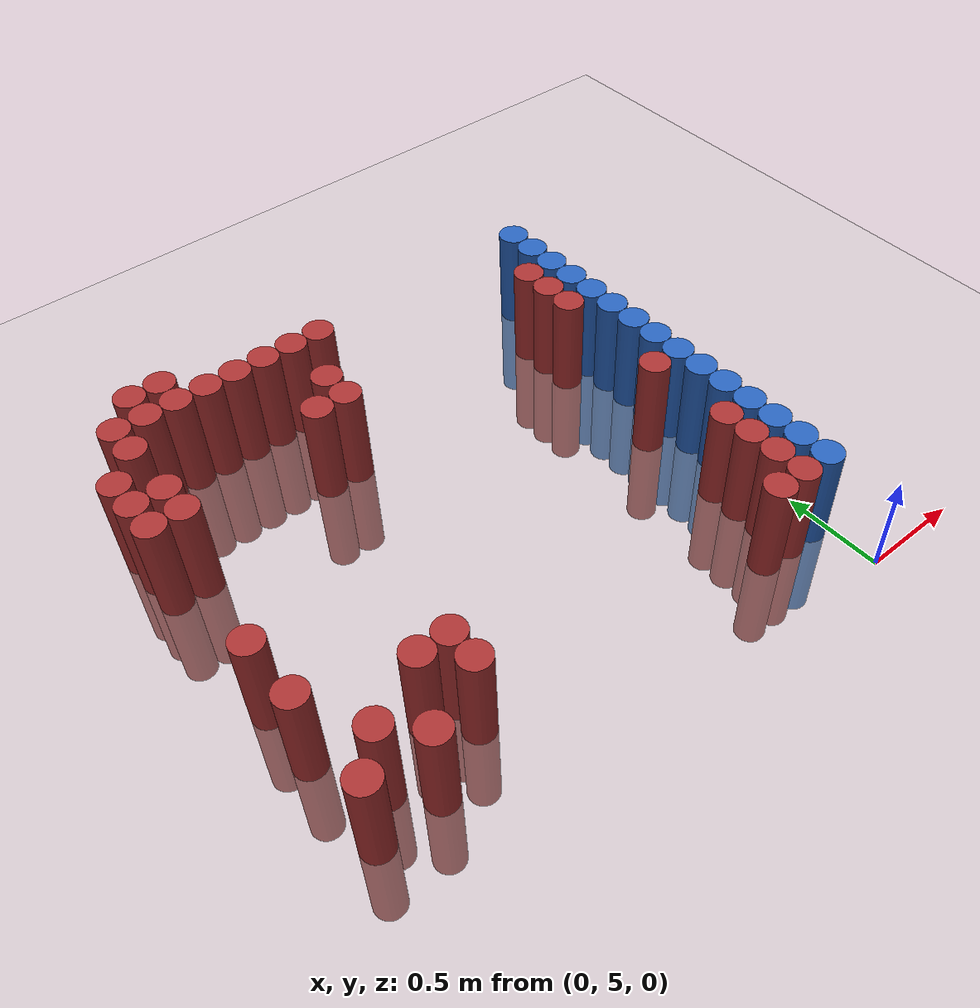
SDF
<sdf version="1.6">
 <world name="default">
  <model name="ground_plane">
   <static>1</static>
   <link name="link">
    <collision name="collision">
     <geometry><plane><normal>0 0 1</normal><size>100 100</size></plane></geometry>
     <surface><friction><ode><mu>100</mu><mu2>50</mu2></ode></friction></surface>
    </collision>
    <visual name="visual">
     <cast_shadows>0</cast_shadows>
     <geometry><plane><normal>0 0 1</normal><size>100 100</size></plane></geometry>
     <material>
      <script><uri>file://media/materials/scripts/gazebo.material</uri><name>Gazebo/Grey</name></script>
     </material>
    </visual>
   </link>
  </model>
  <model name="unit_cylinder_152">
   <static>1</static>
   <pose>-2.475000 5.325000 0.000000 0.000000 0.000000 0.000000</pose>
   <link name="link">
    <inertial>
     <mass>1</mass>
     <inertia><ixx>0.145833</ixx><ixy>0</ixy><ixz>0</ixz><iyy>0.145833</iyy><iyz>0</iyz><izz>0.125</izz></inertia>
    </inertial>
    <collision name="collision">
     <geometry><cylinder><radius>0.075000</radius><length>1</length></cylinder></geometry>
    </collision>
    <visual name="visual">
     <geometry><cylinder><radius>0.075000</radius><length>1</length></cylinder></geometry>
     <material>
      <ambient>0.648000 0.192000 0.192000 1</ambient>
      <diffuse>0.648000 0.192000 0.192000 1</diffuse>
     </material>
     <material>
      <script><name>Gazebo/Grey</name><uri>file://media/materials/scripts/gazebo.material</uri></script>
     </material>
    </visual>
   </link>
  </model>
  <model name="unit_cylinder_153">
   <static>1</static>
   <pose>-2.475000 5.775000 0.000000 0.000000 0.000000 0.000000</pose>
   <link name="link">
    <inertial>
     <mass>1</mass>
     <inertia><ixx>0.145833</ixx><ixy>0</ixy><ixz>0</ixz><iyy>0.145833</iyy><iyz>0</iyz><izz>0.125</izz></inertia>
    </inertial>
    <collision name="collision">
     <geometry><cylinder><radius>0.075000</radius><length>1</length></cylinder></geometry>
    </collision>
    <visual name="visual">
     <geometry><cylinder><radius>0.075000</radius><length>1</length></cylinder></geometry>
     <material>
      <ambient>0.648000 0.192000 0.192000 1</ambient>
      <diffuse>0.648000 0.192000 0.192000 1</diffuse>
     </material>
     <material>
      <script><name>Gazebo/Grey</name><uri>file://media/materials/scripts/gazebo.material</uri></script>
     </material>
    </visual>
   </link>
  </model>
  <model name="unit_cylinder_154">
   <static>1</static>
   <pose>-2.475000 6.075000 0.000000 0.000000 0.000000 0.000000</pose>
   <link name="link">
    <inertial>
     <mass>1</mass>
     <inertia><ixx>0.145833</ixx><ixy>0</ixy><ixz>0</ixz><iyy>0.145833</iyy><iyz>0</iyz><izz>0.125</izz></inertia>
    </inertial>
    <collision name="collision">
     <geometry><cylinder><radius>0.075000</radius><length>1</length></cylinder></geometry>
    </collision>
    <visual name="visual">
     <geometry><cylinder><radius>0.075000</radius><length>1</length></cylinder></geometry>
     <material>
      <ambient>0.648000 0.192000 0.192000 1</ambient>
      <diffuse>0.648000 0.192000 0.192000 1</diffuse>
     </material>
     <material>
      <script><name>Gazebo/Grey</name><uri>file://media/materials/scripts/gazebo.material</uri></script>
     </material>
    </visual>
   </link>
  </model>
  <model name="unit_cylinder_155">
   <static>1</static>
   <pose>-2.475000 6.825000 0.000000 0.000000 0.000000 0.000000</pose>
   <link name="link">
    <inertial>
     <mass>1</mass>
     <inertia><ixx>0.145833</ixx><ixy>0</ixy><ixz>0</ixz><iyy>0.145833</iyy><iyz>0</iyz><izz>0.125</izz></inertia>
    </inertial>
    <collision name="collision">
     <geometry><cylinder><radius>0.075000</radius><length>1</length></cylinder></geometry>
    </collision>
    <visual name="visual">
     <geometry><cylinder><radius>0.075000</radius><length>1</length></cylinder></geometry>
     <material>
      <ambient>0.648000 0.192000 0.192000 1</ambient>
      <diffuse>0.648000 0.192000 0.192000 1</diffuse>
     </material>
     <material>
      <script><name>Gazebo/Grey</name><uri>file://media/materials/scripts/gazebo.material</uri></script>
     </material>
    </visual>
   </link>
  </model>
  <model name="unit_cylinder_156">
   <static>1</static>
   <pose>-2.475000 6.975000 0.000000 0.000000 0.000000 0.000000</pose>
   <link name="link">
    <inertial>
     <mass>1</mass>
     <inertia><ixx>0.145833</ixx><ixy>0</ixy><ixz>0</ixz><iyy>0.145833</iyy><iyz>0</iyz><izz>0.125</izz></inertia>
    </inertial>
    <collision name="collision">
     <geometry><cylinder><radius>0.075000</radius><length>1</length></cylinder></geometry>
    </collision>
    <visual name="visual">
     <geometry><cylinder><radius>0.075000</radius><length>1</length></cylinder></geometry>
     <material>
      <ambient>0.648000 0.192000 0.192000 1</ambient>
      <diffuse>0.648000 0.192000 0.192000 1</diffuse>
     </material>
     <material>
      <script><name>Gazebo/Grey</name><uri>file://media/materials/scripts/gazebo.material</uri></script>
     </material>
    </visual>
   </link>
  </model>
  <model name="unit_cylinder_157">
   <static>1</static>
   <pose>-2.475000 7.125000 0.000000 0.000000 0.000000 0.000000</pose>
   <link name="link">
    <inertial>
     <mass>1</mass>
     <inertia><ixx>0.145833</ixx><ixy>0</ixy><ixz>0</ixz><iyy>0.145833</iyy><iyz>0</iyz><izz>0.125</izz></inertia>
    </inertial>
    <collision name="collision">
     <geometry><cylinder><radius>0.075000</radius><length>1</length></cylinder></geometry>
    </collision>
    <visual name="visual">
     <geometry><cylinder><radius>0.075000</radius><length>1</length></cylinder></geometry>
     <material>
      <ambient>0.648000 0.192000 0.192000 1</ambient>
      <diffuse>0.648000 0.192000 0.192000 1</diffuse>
     </material>
     <material>
      <script><name>Gazebo/Grey</name><uri>file://media/materials/scripts/gazebo.material</uri></script>
     </material>
    </visual>
   </link>
  </model>
  <model name="unit_cylinder_161">
   <static>1</static>
   <pose>-2.325000 5.475000 0.000000 0.000000 0.000000 0.000000</pose>
   <link name="link">
    <inertial>
     <mass>1</mass>
     <inertia><ixx>0.145833</ixx><ixy>0</ixy><ixz>0</ixz><iyy>0.145833</iyy><iyz>0</iyz><izz>0.125</izz></inertia>
    </inertial>
    <collision name="collision">
     <geometry><cylinder><radius>0.075000</radius><length>1</length></cylinder></geometry>
    </collision>
    <visual name="visual">
     <geometry><cylinder><radius>0.075000</radius><length>1</length></cylinder></geometry>
     <material>
      <ambient>0.648000 0.192000 0.192000 1</ambient>
      <diffuse>0.648000 0.192000 0.192000 1</diffuse>
     </material>
     <material>
      <script><name>Gazebo/Grey</name><uri>file://media/materials/scripts/gazebo.material</uri></script>
     </material>
    </visual>
   </link>
  </model>
  <model name="unit_cylinder_162">
   <static>1</static>
   <pose>-2.325000 6.825000 0.000000 0.000000 0.000000 0.000000</pose>
   <link name="link">
    <inertial>
     <mass>1</mass>
     <inertia><ixx>0.145833</ixx><ixy>0</ixy><ixz>0</ixz><iyy>0.145833</iyy><iyz>0</iyz><izz>0.125</izz></inertia>
    </inertial>
    <collision name="collision">
     <geometry><cylinder><radius>0.075000</radius><length>1</length></cylinder></geometry>
    </collision>
    <visual name="visual">
     <geometry><cylinder><radius>0.075000</radius><length>1</length></cylinder></geometry>
     <material>
      <ambient>0.648000 0.192000 0.192000 1</ambient>
      <diffuse>0.648000 0.192000 0.192000 1</diffuse>
     </material>
     <material>
      <script><name>Gazebo/Grey</name><uri>file://media/materials/scripts/gazebo.material</uri></script>
     </material>
    </visual>
   </link>
  </model>
  <model name="unit_cylinder_163">
   <static>1</static>
   <pose>-2.325000 6.975000 0.000000 0.000000 0.000000 0.000000</pose>
   <link name="link">
    <inertial>
     <mass>1</mass>
     <inertia><ixx>0.145833</ixx><ixy>0</ixy><ixz>0</ixz><iyy>0.145833</iyy><iyz>0</iyz><izz>0.125</izz></inertia>
    </inertial>
    <collision name="collision">
     <geometry><cylinder><radius>0.075000</radius><length>1</length></cylinder></geometry>
    </collision>
    <visual name="visual">
     <geometry><cylinder><radius>0.075000</radius><length>1</length></cylinder></geometry>
     <material>
      <ambient>0.648000 0.192000 0.192000 1</ambient>
      <diffuse>0.648000 0.192000 0.192000 1</diffuse>
     </material>
     <material>
      <script><name>Gazebo/Grey</name><uri>file://media/materials/scripts/gazebo.material</uri></script>
     </material>
    </visual>
   </link>
  </model>
  <model name="unit_cylinder_164">
   <static>1</static>
   <pose>-2.325000 7.275000 0.000000 0.000000 0.000000 0.000000</pose>
   <link name="link">
    <inertial>
     <mass>1</mass>
     <inertia><ixx>0.145833</ixx><ixy>0</ixy><ixz>0</ixz><iyy>0.145833</iyy><iyz>0</iyz><izz>0.125</izz></inertia>
    </inertial>
    <collision name="collision">
     <geometry><cylinder><radius>0.075000</radius><length>1</length></cylinder></geometry>
    </collision>
    <visual name="visual">
     <geometry><cylinder><radius>0.075000</radius><length>1</length></cylinder></geometry>
     <material>
      <ambient>0.648000 0.192000 0.192000 1</ambient>
      <diffuse>0.648000 0.192000 0.192000 1</diffuse>
     </material>
     <material>
      <script><name>Gazebo/Grey</name><uri>file://media/materials/scripts/gazebo.material</uri></script>
     </material>
    </visual>
   </link>
  </model>
  <model name="unit_cylinder_165">
   <static>1</static>
   <pose>-2.325000 7.425000 0.000000 0.000000 0.000000 0.000000</pose>
   <link name="link">
    <inertial>
     <mass>1</mass>
     <inertia><ixx>0.145833</ixx><ixy>0</ixy><ixz>0</ixz><iyy>0.145833</iyy><iyz>0</iyz><izz>0.125</izz></inertia>
    </inertial>
    <collision name="collision">
     <geometry><cylinder><radius>0.075000</radius><length>1</length></cylinder></geometry>
    </collision>
    <visual name="visual">
     <geometry><cylinder><radius>0.075000</radius><length>1</length></cylinder></geometry>
     <material>
      <ambient>0.648000 0.192000 0.192000 1</ambient>
      <diffuse>0.648000 0.192000 0.192000 1</diffuse>
     </material>
     <material>
      <script><name>Gazebo/Grey</name><uri>file://media/materials/scripts/gazebo.material</uri></script>
     </material>
    </visual>
   </link>
  </model>
  <model name="unit_cylinder_166">
   <static>1</static>
   <pose>-2.175000 5.325000 0.000000 0.000000 0.000000 0.000000</pose>
   <link name="link">
    <inertial>
     <mass>1</mass>
     <inertia><ixx>0.145833</ixx><ixy>0</ixy><ixz>0</ixz><iyy>0.145833</iyy><iyz>0</iyz><izz>0.125</izz></inertia>
    </inertial>
    <collision name="collision">
     <geometry><cylinder><radius>0.075000</radius><length>1</length></cylinder></geometry>
    </collision>
    <visual name="visual">
     <geometry><cylinder><radius>0.075000</radius><length>1</length></cylinder></geometry>
     <material>
      <ambient>0.648000 0.192000 0.192000 1</ambient>
      <diffuse>0.648000 0.192000 0.192000 1</diffuse>
     </material>
     <material>
      <script><name>Gazebo/Grey</name><uri>file://media/materials/scripts/gazebo.material</uri></script>
     </material>
    </visual>
   </link>
  </model>
  <model name="unit_cylinder_167">
   <static>1</static>
   <pose>-2.175000 7.425000 0.000000 0.000000 0.000000 0.000000</pose>
   <link name="link">
    <inertial>
     <mass>1</mass>
     <inertia><ixx>0.145833</ixx><ixy>0</ixy><ixz>0</ixz><iyy>0.145833</iyy><iyz>0</iyz><izz>0.125</izz></inertia>
    </inertial>
    <collision name="collision">
     <geometry><cylinder><radius>0.075000</radius><length>1</length></cylinder></geometry>
    </collision>
    <visual name="visual">
     <geometry><cylinder><radius>0.075000</radius><length>1</length></cylinder></geometry>
     <material>
      <ambient>0.648000 0.192000 0.192000 1</ambient>
      <diffuse>0.648000 0.192000 0.192000 1</diffuse>
     </material>
     <material>
      <script><name>Gazebo/Grey</name><uri>file://media/materials/scripts/gazebo.material</uri></script>
     </material>
    </visual>
   </link>
  </model>
  <model name="unit_cylinder_168">
   <static>1</static>
   <pose>-2.175000 7.575000 0.000000 0.000000 0.000000 0.000000</pose>
   <link name="link">
    <inertial>
     <mass>1</mass>
     <inertia><ixx>0.145833</ixx><ixy>0</ixy><ixz>0</ixz><iyy>0.145833</iyy><iyz>0</iyz><izz>0.125</izz></inertia>
    </inertial>
    <collision name="collision">
     <geometry><cylinder><radius>0.075000</radius><length>1</length></cylinder></geometry>
    </collision>
    <visual name="visual">
     <geometry><cylinder><radius>0.075000</radius><length>1</length></cylinder></geometry>
     <material>
      <ambient>0.648000 0.192000 0.192000 1</ambient>
      <diffuse>0.648000 0.192000 0.192000 1</diffuse>
     </material>
     <material>
      <script><name>Gazebo/Grey</name><uri>file://media/materials/scripts/gazebo.material</uri></script>
     </material>
    </visual>
   </link>
  </model>
  <model name="unit_cylinder_170">
   <static>1</static>
   <pose>-2.025000 5.625000 0.000000 0.000000 0.000000 0.000000</pose>
   <link name="link">
    <inertial>
     <mass>1</mass>
     <inertia><ixx>0.145833</ixx><ixy>0</ixy><ixz>0</ixz><iyy>0.145833</iyy><iyz>0</iyz><izz>0.125</izz></inertia>
    </inertial>
    <collision name="collision">
     <geometry><cylinder><radius>0.075000</radius><length>1</length></cylinder></geometry>
    </collision>
    <visual name="visual">
     <geometry><cylinder><radius>0.075000</radius><length>1</length></cylinder></geometry>
     <material>
      <ambient>0.648000 0.192000 0.192000 1</ambient>
      <diffuse>0.648000 0.192000 0.192000 1</diffuse>
     </material>
     <material>
      <script><name>Gazebo/Grey</name><uri>file://media/materials/scripts/gazebo.material</uri></script>
     </material>
    </visual>
   </link>
  </model>
  <model name="unit_cylinder_171">
   <static>1</static>
   <pose>-2.025000 7.425000 0.000000 0.000000 0.000000 0.000000</pose>
   <link name="link">
    <inertial>
     <mass>1</mass>
     <inertia><ixx>0.145833</ixx><ixy>0</ixy><ixz>0</ixz><iyy>0.145833</iyy><iyz>0</iyz><izz>0.125</izz></inertia>
    </inertial>
    <collision name="collision">
     <geometry><cylinder><radius>0.075000</radius><length>1</length></cylinder></geometry>
    </collision>
    <visual name="visual">
     <geometry><cylinder><radius>0.075000</radius><length>1</length></cylinder></geometry>
     <material>
      <ambient>0.648000 0.192000 0.192000 1</ambient>
      <diffuse>0.648000 0.192000 0.192000 1</diffuse>
     </material>
     <material>
      <script><name>Gazebo/Grey</name><uri>file://media/materials/scripts/gazebo.material</uri></script>
     </material>
    </visual>
   </link>
  </model>
  <model name="unit_cylinder_172">
   <static>1</static>
   <pose>-2.025000 7.575000 0.000000 0.000000 0.000000 0.000000</pose>
   <link name="link">
    <inertial>
     <mass>1</mass>
     <inertia><ixx>0.145833</ixx><ixy>0</ixy><ixz>0</ixz><iyy>0.145833</iyy><iyz>0</iyz><izz>0.125</izz></inertia>
    </inertial>
    <collision name="collision">
     <geometry><cylinder><radius>0.075000</radius><length>1</length></cylinder></geometry>
    </collision>
    <visual name="visual">
     <geometry><cylinder><radius>0.075000</radius><length>1</length></cylinder></geometry>
     <material>
      <ambient>0.648000 0.192000 0.192000 1</ambient>
      <diffuse>0.648000 0.192000 0.192000 1</diffuse>
     </material>
     <material>
      <script><name>Gazebo/Grey</name><uri>file://media/materials/scripts/gazebo.material</uri></script>
     </material>
    </visual>
   </link>
  </model>
  <model name="unit_cylinder_175">
   <static>1</static>
   <pose>-1.875000 5.475000 0.000000 0.000000 0.000000 0.000000</pose>
   <link name="link">
    <inertial>
     <mass>1</mass>
     <inertia><ixx>0.145833</ixx><ixy>0</ixy><ixz>0</ixz><iyy>0.145833</iyy><iyz>0</iyz><izz>0.125</izz></inertia>
    </inertial>
    <collision name="collision">
     <geometry><cylinder><radius>0.075000</radius><length>1</length></cylinder></geometry>
    </collision>
    <visual name="visual">
     <geometry><cylinder><radius>0.075000</radius><length>1</length></cylinder></geometry>
     <material>
      <ambient>0.648000 0.192000 0.192000 1</ambient>
      <diffuse>0.648000 0.192000 0.192000 1</diffuse>
     </material>
     <material>
      <script><name>Gazebo/Grey</name><uri>file://media/materials/scripts/gazebo.material</uri></script>
     </material>
    </visual>
   </link>
  </model>
  <model name="unit_cylinder_176">
   <static>1</static>
   <pose>-1.875000 5.625000 0.000000 0.000000 0.000000 0.000000</pose>
   <link name="link">
    <inertial>
     <mass>1</mass>
     <inertia><ixx>0.145833</ixx><ixy>0</ixy><ixz>0</ixz><iyy>0.145833</iyy><iyz>0</iyz><izz>0.125</izz></inertia>
    </inertial>
    <collision name="collision">
     <geometry><cylinder><radius>0.075000</radius><length>1</length></cylinder></geometry>
    </collision>
    <visual name="visual">
     <geometry><cylinder><radius>0.075000</radius><length>1</length></cylinder></geometry>
     <material>
      <ambient>0.648000 0.192000 0.192000 1</ambient>
      <diffuse>0.648000 0.192000 0.192000 1</diffuse>
     </material>
     <material>
      <script><name>Gazebo/Grey</name><uri>file://media/materials/scripts/gazebo.material</uri></script>
     </material>
    </visual>
   </link>
  </model>
  <model name="unit_cylinder_177">
   <static>1</static>
   <pose>-1.875000 7.425000 0.000000 0.000000 0.000000 0.000000</pose>
   <link name="link">
    <inertial>
     <mass>1</mass>
     <inertia><ixx>0.145833</ixx><ixy>0</ixy><ixz>0</ixz><iyy>0.145833</iyy><iyz>0</iyz><izz>0.125</izz></inertia>
    </inertial>
    <collision name="collision">
     <geometry><cylinder><radius>0.075000</radius><length>1</length></cylinder></geometry>
    </collision>
    <visual name="visual">
     <geometry><cylinder><radius>0.075000</radius><length>1</length></cylinder></geometry>
     <material>
      <ambient>0.648000 0.192000 0.192000 1</ambient>
      <diffuse>0.648000 0.192000 0.192000 1</diffuse>
     </material>
     <material>
      <script><name>Gazebo/Grey</name><uri>file://media/materials/scripts/gazebo.material</uri></script>
     </material>
    </visual>
   </link>
  </model>
  <model name="unit_cylinder_182">
   <static>1</static>
   <pose>-1.725000 7.425000 0.000000 0.000000 0.000000 0.000000</pose>
   <link name="link">
    <inertial>
     <mass>1</mass>
     <inertia><ixx>0.145833</ixx><ixy>0</ixy><ixz>0</ixz><iyy>0.145833</iyy><iyz>0</iyz><izz>0.125</izz></inertia>
    </inertial>
    <collision name="collision">
     <geometry><cylinder><radius>0.075000</radius><length>1</length></cylinder></geometry>
    </collision>
    <visual name="visual">
     <geometry><cylinder><radius>0.075000</radius><length>1</length></cylinder></geometry>
     <material>
      <ambient>0.648000 0.192000 0.192000 1</ambient>
      <diffuse>0.648000 0.192000 0.192000 1</diffuse>
     </material>
     <material>
      <script><name>Gazebo/Grey</name><uri>file://media/materials/scripts/gazebo.material</uri></script>
     </material>
    </visual>
   </link>
  </model>
  <model name="unit_cylinder_185">
   <static>1</static>
   <pose>-1.575000 6.975000 0.000000 0.000000 0.000000 0.000000</pose>
   <link name="link">
    <inertial>
     <mass>1</mass>
     <inertia><ixx>0.145833</ixx><ixy>0</ixy><ixz>0</ixz><iyy>0.145833</iyy><iyz>0</iyz><izz>0.125</izz></inertia>
    </inertial>
    <collision name="collision">
     <geometry><cylinder><radius>0.075000</radius><length>1</length></cylinder></geometry>
    </collision>
    <visual name="visual">
     <geometry><cylinder><radius>0.075000</radius><length>1</length></cylinder></geometry>
     <material>
      <ambient>0.648000 0.192000 0.192000 1</ambient>
      <diffuse>0.648000 0.192000 0.192000 1</diffuse>
     </material>
     <material>
      <script><name>Gazebo/Grey</name><uri>file://media/materials/scripts/gazebo.material</uri></script>
     </material>
    </visual>
   </link>
  </model>
  <model name="unit_cylinder_186">
   <static>1</static>
   <pose>-1.575000 7.425000 0.000000 0.000000 0.000000 0.000000</pose>
   <link name="link">
    <inertial>
     <mass>1</mass>
     <inertia><ixx>0.145833</ixx><ixy>0</ixy><ixz>0</ixz><iyy>0.145833</iyy><iyz>0</iyz><izz>0.125</izz></inertia>
    </inertial>
    <collision name="collision">
     <geometry><cylinder><radius>0.075000</radius><length>1</length></cylinder></geometry>
    </collision>
    <visual name="visual">
     <geometry><cylinder><radius>0.075000</radius><length>1</length></cylinder></geometry>
     <material>
      <ambient>0.648000 0.192000 0.192000 1</ambient>
      <diffuse>0.648000 0.192000 0.192000 1</diffuse>
     </material>
     <material>
      <script><name>Gazebo/Grey</name><uri>file://media/materials/scripts/gazebo.material</uri></script>
     </material>
    </visual>
   </link>
  </model>
  <model name="unit_cylinder_190">
   <static>1</static>
   <pose>-1.425000 6.975000 0.000000 0.000000 0.000000 0.000000</pose>
   <link name="link">
    <inertial>
     <mass>1</mass>
     <inertia><ixx>0.145833</ixx><ixy>0</ixy><ixz>0</ixz><iyy>0.145833</iyy><iyz>0</iyz><izz>0.125</izz></inertia>
    </inertial>
    <collision name="collision">
     <geometry><cylinder><radius>0.075000</radius><length>1</length></cylinder></geometry>
    </collision>
    <visual name="visual">
     <geometry><cylinder><radius>0.075000</radius><length>1</length></cylinder></geometry>
     <material>
      <ambient>0.648000 0.192000 0.192000 1</ambient>
      <diffuse>0.648000 0.192000 0.192000 1</diffuse>
     </material>
     <material>
      <script><name>Gazebo/Grey</name><uri>file://media/materials/scripts/gazebo.material</uri></script>
     </material>
    </visual>
   </link>
  </model>
  <model name="unit_cylinder_191">
   <static>1</static>
   <pose>-1.425000 7.125000 0.000000 0.000000 0.000000 0.000000</pose>
   <link name="link">
    <inertial>
     <mass>1</mass>
     <inertia><ixx>0.145833</ixx><ixy>0</ixy><ixz>0</ixz><iyy>0.145833</iyy><iyz>0</iyz><izz>0.125</izz></inertia>
    </inertial>
    <collision name="collision">
     <geometry><cylinder><radius>0.075000</radius><length>1</length></cylinder></geometry>
    </collision>
    <visual name="visual">
     <geometry><cylinder><radius>0.075000</radius><length>1</length></cylinder></geometry>
     <material>
      <ambient>0.648000 0.192000 0.192000 1</ambient>
      <diffuse>0.648000 0.192000 0.192000 1</diffuse>
     </material>
     <material>
      <script><name>Gazebo/Grey</name><uri>file://media/materials/scripts/gazebo.material</uri></script>
     </material>
    </visual>
   </link>
  </model>
  <model name="unit_cylinder_192">
   <static>1</static>
   <pose>-1.425000 7.425000 0.000000 0.000000 0.000000 0.000000</pose>
   <link name="link">
    <inertial>
     <mass>1</mass>
     <inertia><ixx>0.145833</ixx><ixy>0</ixy><ixz>0</ixz><iyy>0.145833</iyy><iyz>0</iyz><izz>0.125</izz></inertia>
    </inertial>
    <collision name="collision">
     <geometry><cylinder><radius>0.075000</radius><length>1</length></cylinder></geometry>
    </collision>
    <visual name="visual">
     <geometry><cylinder><radius>0.075000</radius><length>1</length></cylinder></geometry>
     <material>
      <ambient>0.648000 0.192000 0.192000 1</ambient>
      <diffuse>0.648000 0.192000 0.192000 1</diffuse>
     </material>
     <material>
      <script><name>Gazebo/Grey</name><uri>file://media/materials/scripts/gazebo.material</uri></script>
     </material>
    </visual>
   </link>
  </model>
  <model name="unit_cylinder_197">
   <static>1</static>
   <pose>-1.275000 7.425000 0.000000 0.000000 0.000000 0.000000</pose>
   <link name="link">
    <inertial>
     <mass>1</mass>
     <inertia><ixx>0.145833</ixx><ixy>0</ixy><ixz>0</ixz><iyy>0.145833</iyy><iyz>0</iyz><izz>0.125</izz></inertia>
    </inertial>
    <collision name="collision">
     <geometry><cylinder><radius>0.075000</radius><length>1</length></cylinder></geometry>
    </collision>
    <visual name="visual">
     <geometry><cylinder><radius>0.075000</radius><length>1</length></cylinder></geometry>
     <material>
      <ambient>0.648000 0.192000 0.192000 1</ambient>
      <diffuse>0.648000 0.192000 0.192000 1</diffuse>
     </material>
     <material>
      <script><name>Gazebo/Grey</name><uri>file://media/materials/scripts/gazebo.material</uri></script>
     </material>
    </visual>
   </link>
  </model>
  <model name="unit_cylinder_207">
   <static>1</static>
   <pose>-0.375000 5.325000 0.000000 0.000000 0.000000 0.000000</pose>
   <link name="link">
    <inertial>
     <mass>1</mass>
     <inertia><ixx>0.145833</ixx><ixy>0</ixy><ixz>0</ixz><iyy>0.145833</iyy><iyz>0</iyz><izz>0.125</izz></inertia>
    </inertial>
    <collision name="collision">
     <geometry><cylinder><radius>0.075000</radius><length>1</length></cylinder></geometry>
    </collision>
    <visual name="visual">
     <geometry><cylinder><radius>0.075000</radius><length>1</length></cylinder></geometry>
     <material>
      <ambient>0.648000 0.192000 0.192000 1</ambient>
      <diffuse>0.648000 0.192000 0.192000 1</diffuse>
     </material>
     <material>
      <script><name>Gazebo/Grey</name><uri>file://media/materials/scripts/gazebo.material</uri></script>
     </material>
    </visual>
   </link>
  </model>
  <model name="unit_cylinder_211">
   <static>1</static>
   <pose>-0.225000 5.325000 0.000000 0.000000 0.000000 0.000000</pose>
   <link name="link">
    <inertial>
     <mass>1</mass>
     <inertia><ixx>0.145833</ixx><ixy>0</ixy><ixz>0</ixz><iyy>0.145833</iyy><iyz>0</iyz><izz>0.125</izz></inertia>
    </inertial>
    <collision name="collision">
     <geometry><cylinder><radius>0.075000</radius><length>1</length></cylinder></geometry>
    </collision>
    <visual name="visual">
     <geometry><cylinder><radius>0.075000</radius><length>1</length></cylinder></geometry>
     <material>
      <ambient>0.648000 0.192000 0.192000 1</ambient>
      <diffuse>0.648000 0.192000 0.192000 1</diffuse>
     </material>
     <material>
      <script><name>Gazebo/Grey</name><uri>file://media/materials/scripts/gazebo.material</uri></script>
     </material>
    </visual>
   </link>
  </model>
  <model name="unit_cylinder_212">
   <static>1</static>
   <pose>-0.225000 5.475000 0.000000 0.000000 0.000000 0.000000</pose>
   <link name="link">
    <inertial>
     <mass>1</mass>
     <inertia><ixx>0.145833</ixx><ixy>0</ixy><ixz>0</ixz><iyy>0.145833</iyy><iyz>0</iyz><izz>0.125</izz></inertia>
    </inertial>
    <collision name="collision">
     <geometry><cylinder><radius>0.075000</radius><length>1</length></cylinder></geometry>
    </collision>
    <visual name="visual">
     <geometry><cylinder><radius>0.075000</radius><length>1</length></cylinder></geometry>
     <material>
      <ambient>0.648000 0.192000 0.192000 1</ambient>
      <diffuse>0.648000 0.192000 0.192000 1</diffuse>
     </material>
     <material>
      <script><name>Gazebo/Grey</name><uri>file://media/materials/scripts/gazebo.material</uri></script>
     </material>
    </visual>
   </link>
  </model>
  <model name="unit_cylinder_213">
   <static>1</static>
   <pose>-0.225000 5.625000 0.000000 0.000000 0.000000 0.000000</pose>
   <link name="link">
    <inertial>
     <mass>1</mass>
     <inertia><ixx>0.145833</ixx><ixy>0</ixy><ixz>0</ixz><iyy>0.145833</iyy><iyz>0</iyz><izz>0.125</izz></inertia>
    </inertial>
    <collision name="collision">
     <geometry><cylinder><radius>0.075000</radius><length>1</length></cylinder></geometry>
    </collision>
    <visual name="visual">
     <geometry><cylinder><radius>0.075000</radius><length>1</length></cylinder></geometry>
     <material>
      <ambient>0.648000 0.192000 0.192000 1</ambient>
      <diffuse>0.648000 0.192000 0.192000 1</diffuse>
     </material>
     <material>
      <script><name>Gazebo/Grey</name><uri>file://media/materials/scripts/gazebo.material</uri></script>
     </material>
    </visual>
   </link>
  </model>
  <model name="unit_cylinder_214">
   <static>1</static>
   <pose>-0.225000 5.775000 0.000000 0.000000 0.000000 0.000000</pose>
   <link name="link">
    <inertial>
     <mass>1</mass>
     <inertia><ixx>0.145833</ixx><ixy>0</ixy><ixz>0</ixz><iyy>0.145833</iyy><iyz>0</iyz><izz>0.125</izz></inertia>
    </inertial>
    <collision name="collision">
     <geometry><cylinder><radius>0.075000</radius><length>1</length></cylinder></geometry>
    </collision>
    <visual name="visual">
     <geometry><cylinder><radius>0.075000</radius><length>1</length></cylinder></geometry>
     <material>
      <ambient>0.648000 0.192000 0.192000 1</ambient>
      <diffuse>0.648000 0.192000 0.192000 1</diffuse>
     </material>
     <material>
      <script><name>Gazebo/Grey</name><uri>file://media/materials/scripts/gazebo.material</uri></script>
     </material>
    </visual>
   </link>
  </model>
  <model name="unit_cylinder_215">
   <static>1</static>
   <pose>-0.225000 6.225000 0.000000 0.000000 0.000000 0.000000</pose>
   <link name="link">
    <inertial>
     <mass>1</mass>
     <inertia><ixx>0.145833</ixx><ixy>0</ixy><ixz>0</ixz><iyy>0.145833</iyy><iyz>0</iyz><izz>0.125</izz></inertia>
    </inertial>
    <collision name="collision">
     <geometry><cylinder><radius>0.075000</radius><length>1</length></cylinder></geometry>
    </collision>
    <visual name="visual">
     <geometry><cylinder><radius>0.075000</radius><length>1</length></cylinder></geometry>
     <material>
      <ambient>0.648000 0.192000 0.192000 1</ambient>
      <diffuse>0.648000 0.192000 0.192000 1</diffuse>
     </material>
     <material>
      <script><name>Gazebo/Grey</name><uri>file://media/materials/scripts/gazebo.material</uri></script>
     </material>
    </visual>
   </link>
  </model>
  <model name="unit_cylinder_216">
   <static>1</static>
   <pose>-0.225000 6.825000 0.000000 0.000000 0.000000 0.000000</pose>
   <link name="link">
    <inertial>
     <mass>1</mass>
     <inertia><ixx>0.145833</ixx><ixy>0</ixy><ixz>0</ixz><iyy>0.145833</iyy><iyz>0</iyz><izz>0.125</izz></inertia>
    </inertial>
    <collision name="collision">
     <geometry><cylinder><radius>0.075000</radius><length>1</length></cylinder></geometry>
    </collision>
    <visual name="visual">
     <geometry><cylinder><radius>0.075000</radius><length>1</length></cylinder></geometry>
     <material>
      <ambient>0.648000 0.192000 0.192000 1</ambient>
      <diffuse>0.648000 0.192000 0.192000 1</diffuse>
     </material>
     <material>
      <script><name>Gazebo/Grey</name><uri>file://media/materials/scripts/gazebo.material</uri></script>
     </material>
    </visual>
   </link>
  </model>
  <model name="unit_cylinder_217">
   <static>1</static>
   <pose>-0.225000 6.975000 0.000000 0.000000 0.000000 0.000000</pose>
   <link name="link">
    <inertial>
     <mass>1</mass>
     <inertia><ixx>0.145833</ixx><ixy>0</ixy><ixz>0</ixz><iyy>0.145833</iyy><iyz>0</iyz><izz>0.125</izz></inertia>
    </inertial>
    <collision name="collision">
     <geometry><cylinder><radius>0.075000</radius><length>1</length></cylinder></geometry>
    </collision>
    <visual name="visual">
     <geometry><cylinder><radius>0.075000</radius><length>1</length></cylinder></geometry>
     <material>
      <ambient>0.648000 0.192000 0.192000 1</ambient>
      <diffuse>0.648000 0.192000 0.192000 1</diffuse>
     </material>
     <material>
      <script><name>Gazebo/Grey</name><uri>file://media/materials/scripts/gazebo.material</uri></script>
     </material>
    </visual>
   </link>
  </model>
  <model name="unit_cylinder_218">
   <static>1</static>
   <pose>-0.225000 7.125000 0.000000 0.000000 0.000000 0.000000</pose>
   <link name="link">
    <inertial>
     <mass>1</mass>
     <inertia><ixx>0.145833</ixx><ixy>0</ixy><ixz>0</ixz><iyy>0.145833</iyy><iyz>0</iyz><izz>0.125</izz></inertia>
    </inertial>
    <collision name="collision">
     <geometry><cylinder><radius>0.075000</radius><length>1</length></cylinder></geometry>
    </collision>
    <visual name="visual">
     <geometry><cylinder><radius>0.075000</radius><length>1</length></cylinder></geometry>
     <material>
      <ambient>0.648000 0.192000 0.192000 1</ambient>
      <diffuse>0.648000 0.192000 0.192000 1</diffuse>
     </material>
     <material>
      <script><name>Gazebo/Grey</name><uri>file://media/materials/scripts/gazebo.material</uri></script>
     </material>
    </visual>
   </link>
  </model>
  <model name="unit_cylinder_228">
   <static>1</static>
   <pose>-0.075000 5.325000 0.000000 0.000000 0.000000 0.000000</pose>
   <link name="link">
    <inertial>
     <mass>1</mass>
     <inertia><ixx>0.145833</ixx><ixy>0</ixy><ixz>0</ixz><iyy>0.145833</iyy><iyz>0</iyz><izz>0.125</izz></inertia>
    </inertial>
    <collision name="collision">
     <geometry><cylinder><radius>0.075000</radius><length>1</length></cylinder></geometry>
    </collision>
    <visual name="visual">
     <geometry><cylinder><radius>0.075000</radius><length>1</length></cylinder></geometry>
     <material>
      <ambient>0.152000 0.379000 0.720000 1</ambient>
      <diffuse>0.152000 0.379000 0.720000 1</diffuse>
     </material>
     <material>
      <script><name>Gazebo/Grey</name><uri>file://media/materials/scripts/gazebo.material</uri></script>
     </material>
    </visual>
   </link>
  </model>
  <model name="unit_cylinder_229">
   <static>1</static>
   <pose>-0.075000 5.475000 0.000000 0.000000 0.000000 0.000000</pose>
   <link name="link">
    <inertial>
     <mass>1</mass>
     <inertia><ixx>0.145833</ixx><ixy>0</ixy><ixz>0</ixz><iyy>0.145833</iyy><iyz>0</iyz><izz>0.125</izz></inertia>
    </inertial>
    <collision name="collision">
     <geometry><cylinder><radius>0.075000</radius><length>1</length></cylinder></geometry>
    </collision>
    <visual name="visual">
     <geometry><cylinder><radius>0.075000</radius><length>1</length></cylinder></geometry>
     <material>
      <ambient>0.152000 0.379000 0.720000 1</ambient>
      <diffuse>0.152000 0.379000 0.720000 1</diffuse>
     </material>
     <material>
      <script><name>Gazebo/Grey</name><uri>file://media/materials/scripts/gazebo.material</uri></script>
     </material>
    </visual>
   </link>
  </model>
  <model name="unit_cylinder_230">
   <static>1</static>
   <pose>-0.075000 5.625000 0.000000 0.000000 0.000000 0.000000</pose>
   <link name="link">
    <inertial>
     <mass>1</mass>
     <inertia><ixx>0.145833</ixx><ixy>0</ixy><ixz>0</ixz><iyy>0.145833</iyy><iyz>0</iyz><izz>0.125</izz></inertia>
    </inertial>
    <collision name="collision">
     <geometry><cylinder><radius>0.075000</radius><length>1</length></cylinder></geometry>
    </collision>
    <visual name="visual">
     <geometry><cylinder><radius>0.075000</radius><length>1</length></cylinder></geometry>
     <material>
      <ambient>0.152000 0.379000 0.720000 1</ambient>
      <diffuse>0.152000 0.379000 0.720000 1</diffuse>
     </material>
     <material>
      <script><name>Gazebo/Grey</name><uri>file://media/materials/scripts/gazebo.material</uri></script>
     </material>
    </visual>
   </link>
  </model>
  <model name="unit_cylinder_231">
   <static>1</static>
   <pose>-0.075000 5.775000 0.000000 0.000000 0.000000 0.000000</pose>
   <link name="link">
    <inertial>
     <mass>1</mass>
     <inertia><ixx>0.145833</ixx><ixy>0</ixy><ixz>0</ixz><iyy>0.145833</iyy><iyz>0</iyz><izz>0.125</izz></inertia>
    </inertial>
    <collision name="collision">
     <geometry><cylinder><radius>0.075000</radius><length>1</length></cylinder></geometry>
    </collision>
    <visual name="visual">
     <geometry><cylinder><radius>0.075000</radius><length>1</length></cylinder></geometry>
     <material>
      <ambient>0.152000 0.379000 0.720000 1</ambient>
      <diffuse>0.152000 0.379000 0.720000 1</diffuse>
     </material>
     <material>
      <script><name>Gazebo/Grey</name><uri>file://media/materials/scripts/gazebo.material</uri></script>
     </material>
    </visual>
   </link>
  </model>
  <model name="unit_cylinder_232">
   <static>1</static>
   <pose>-0.075000 5.925000 0.000000 0.000000 0.000000 0.000000</pose>
   <link name="link">
    <inertial>
     <mass>1</mass>
     <inertia><ixx>0.145833</ixx><ixy>0</ixy><ixz>0</ixz><iyy>0.145833</iyy><iyz>0</iyz><izz>0.125</izz></inertia>
    </inertial>
    <collision name="collision">
     <geometry><cylinder><radius>0.075000</radius><length>1</length></cylinder></geometry>
    </collision>
    <visual name="visual">
     <geometry><cylinder><radius>0.075000</radius><length>1</length></cylinder></geometry>
     <material>
      <ambient>0.152000 0.379000 0.720000 1</ambient>
      <diffuse>0.152000 0.379000 0.720000 1</diffuse>
     </material>
     <material>
      <script><name>Gazebo/Grey</name><uri>file://media/materials/scripts/gazebo.material</uri></script>
     </material>
    </visual>
   </link>
  </model>
  <model name="unit_cylinder_233">
   <static>1</static>
   <pose>-0.075000 6.075000 0.000000 0.000000 0.000000 0.000000</pose>
   <link name="link">
    <inertial>
     <mass>1</mass>
     <inertia><ixx>0.145833</ixx><ixy>0</ixy><ixz>0</ixz><iyy>0.145833</iyy><iyz>0</iyz><izz>0.125</izz></inertia>
    </inertial>
    <collision name="collision">
     <geometry><cylinder><radius>0.075000</radius><length>1</length></cylinder></geometry>
    </collision>
    <visual name="visual">
     <geometry><cylinder><radius>0.075000</radius><length>1</length></cylinder></geometry>
     <material>
      <ambient>0.152000 0.379000 0.720000 1</ambient>
      <diffuse>0.152000 0.379000 0.720000 1</diffuse>
     </material>
     <material>
      <script><name>Gazebo/Grey</name><uri>file://media/materials/scripts/gazebo.material</uri></script>
     </material>
    </visual>
   </link>
  </model>
  <model name="unit_cylinder_234">
   <static>1</static>
   <pose>-0.075000 6.225000 0.000000 0.000000 0.000000 0.000000</pose>
   <link name="link">
    <inertial>
     <mass>1</mass>
     <inertia><ixx>0.145833</ixx><ixy>0</ixy><ixz>0</ixz><iyy>0.145833</iyy><iyz>0</iyz><izz>0.125</izz></inertia>
    </inertial>
    <collision name="collision">
     <geometry><cylinder><radius>0.075000</radius><length>1</length></cylinder></geometry>
    </collision>
    <visual name="visual">
     <geometry><cylinder><radius>0.075000</radius><length>1</length></cylinder></geometry>
     <material>
      <ambient>0.152000 0.379000 0.720000 1</ambient>
      <diffuse>0.152000 0.379000 0.720000 1</diffuse>
     </material>
     <material>
      <script><name>Gazebo/Grey</name><uri>file://media/materials/scripts/gazebo.material</uri></script>
     </material>
    </visual>
   </link>
  </model>
  <model name="unit_cylinder_235">
   <static>1</static>
   <pose>-0.075000 6.375000 0.000000 0.000000 0.000000 0.000000</pose>
   <link name="link">
    <inertial>
     <mass>1</mass>
     <inertia><ixx>0.145833</ixx><ixy>0</ixy><ixz>0</ixz><iyy>0.145833</iyy><iyz>0</iyz><izz>0.125</izz></inertia>
    </inertial>
    <collision name="collision">
     <geometry><cylinder><radius>0.075000</radius><length>1</length></cylinder></geometry>
    </collision>
    <visual name="visual">
     <geometry><cylinder><radius>0.075000</radius><length>1</length></cylinder></geometry>
     <material>
      <ambient>0.152000 0.379000 0.720000 1</ambient>
      <diffuse>0.152000 0.379000 0.720000 1</diffuse>
     </material>
     <material>
      <script><name>Gazebo/Grey</name><uri>file://media/materials/scripts/gazebo.material</uri></script>
     </material>
    </visual>
   </link>
  </model>
  <model name="unit_cylinder_236">
   <static>1</static>
   <pose>-0.075000 6.525000 0.000000 0.000000 0.000000 0.000000</pose>
   <link name="link">
    <inertial>
     <mass>1</mass>
     <inertia><ixx>0.145833</ixx><ixy>0</ixy><ixz>0</ixz><iyy>0.145833</iyy><iyz>0</iyz><izz>0.125</izz></inertia>
    </inertial>
    <collision name="collision">
     <geometry><cylinder><radius>0.075000</radius><length>1</length></cylinder></geometry>
    </collision>
    <visual name="visual">
     <geometry><cylinder><radius>0.075000</radius><length>1</length></cylinder></geometry>
     <material>
      <ambient>0.152000 0.379000 0.720000 1</ambient>
      <diffuse>0.152000 0.379000 0.720000 1</diffuse>
     </material>
     <material>
      <script><name>Gazebo/Grey</name><uri>file://media/materials/scripts/gazebo.material</uri></script>
     </material>
    </visual>
   </link>
  </model>
  <model name="unit_cylinder_237">
   <static>1</static>
   <pose>-0.075000 6.675000 0.000000 0.000000 0.000000 0.000000</pose>
   <link name="link">
    <inertial>
     <mass>1</mass>
     <inertia><ixx>0.145833</ixx><ixy>0</ixy><ixz>0</ixz><iyy>0.145833</iyy><iyz>0</iyz><izz>0.125</izz></inertia>
    </inertial>
    <collision name="collision">
     <geometry><cylinder><radius>0.075000</radius><length>1</length></cylinder></geometry>
    </collision>
    <visual name="visual">
     <geometry><cylinder><radius>0.075000</radius><length>1</length></cylinder></geometry>
     <material>
      <ambient>0.152000 0.379000 0.720000 1</ambient>
      <diffuse>0.152000 0.379000 0.720000 1</diffuse>
     </material>
     <material>
      <script><name>Gazebo/Grey</name><uri>file://media/materials/scripts/gazebo.material</uri></script>
     </material>
    </visual>
   </link>
  </model>
  <model name="unit_cylinder_238">
   <static>1</static>
   <pose>-0.075000 6.825000 0.000000 0.000000 0.000000 0.000000</pose>
   <link name="link">
    <inertial>
     <mass>1</mass>
     <inertia><ixx>0.145833</ixx><ixy>0</ixy><ixz>0</ixz><iyy>0.145833</iyy><iyz>0</iyz><izz>0.125</izz></inertia>
    </inertial>
    <collision name="collision">
     <geometry><cylinder><radius>0.075000</radius><length>1</length></cylinder></geometry>
    </collision>
    <visual name="visual">
     <geometry><cylinder><radius>0.075000</radius><length>1</length></cylinder></geometry>
     <material>
      <ambient>0.152000 0.379000 0.720000 1</ambient>
      <diffuse>0.152000 0.379000 0.720000 1</diffuse>
     </material>
     <material>
      <script><name>Gazebo/Grey</name><uri>file://media/materials/scripts/gazebo.material</uri></script>
     </material>
    </visual>
   </link>
  </model>
  <model name="unit_cylinder_239">
   <static>1</static>
   <pose>-0.075000 6.975000 0.000000 0.000000 0.000000 0.000000</pose>
   <link name="link">
    <inertial>
     <mass>1</mass>
     <inertia><ixx>0.145833</ixx><ixy>0</ixy><ixz>0</ixz><iyy>0.145833</iyy><iyz>0</iyz><izz>0.125</izz></inertia>
    </inertial>
    <collision name="collision">
     <geometry><cylinder><radius>0.075000</radius><length>1</length></cylinder></geometry>
    </collision>
    <visual name="visual">
     <geometry><cylinder><radius>0.075000</radius><length>1</length></cylinder></geometry>
     <material>
      <ambient>0.152000 0.379000 0.720000 1</ambient>
      <diffuse>0.152000 0.379000 0.720000 1</diffuse>
     </material>
     <material>
      <script><name>Gazebo/Grey</name><uri>file://media/materials/scripts/gazebo.material</uri></script>
     </material>
    </visual>
   </link>
  </model>
  <model name="unit_cylinder_240">
   <static>1</static>
   <pose>-0.075000 7.125000 0.000000 0.000000 0.000000 0.000000</pose>
   <link name="link">
    <inertial>
     <mass>1</mass>
     <inertia><ixx>0.145833</ixx><ixy>0</ixy><ixz>0</ixz><iyy>0.145833</iyy><iyz>0</iyz><izz>0.125</izz></inertia>
    </inertial>
    <collision name="collision">
     <geometry><cylinder><radius>0.075000</radius><length>1</length></cylinder></geometry>
    </collision>
    <visual name="visual">
     <geometry><cylinder><radius>0.075000</radius><length>1</length></cylinder></geometry>
     <material>
      <ambient>0.152000 0.379000 0.720000 1</ambient>
      <diffuse>0.152000 0.379000 0.720000 1</diffuse>
     </material>
     <material>
      <script><name>Gazebo/Grey</name><uri>file://media/materials/scripts/gazebo.material</uri></script>
     </material>
    </visual>
   </link>
  </model>
  <model name="unit_cylinder_241">
   <static>1</static>
   <pose>-0.075000 7.275000 0.000000 0.000000 0.000000 0.000000</pose>
   <link name="link">
    <inertial>
     <mass>1</mass>
     <inertia><ixx>0.145833</ixx><ixy>0</ixy><ixz>0</ixz><iyy>0.145833</iyy><iyz>0</iyz><izz>0.125</izz></inertia>
    </inertial>
    <collision name="collision">
     <geometry><cylinder><radius>0.075000</radius><length>1</length></cylinder></geometry>
    </collision>
    <visual name="visual">
     <geometry><cylinder><radius>0.075000</radius><length>1</length></cylinder></geometry>
     <material>
      <ambient>0.152000 0.379000 0.720000 1</ambient>
      <diffuse>0.152000 0.379000 0.720000 1</diffuse>
     </material>
     <material>
      <script><name>Gazebo/Grey</name><uri>file://media/materials/scripts/gazebo.material</uri></script>
     </material>
    </visual>
   </link>
  </model>
  <model name="unit_cylinder_242">
   <static>1</static>
   <pose>-0.075000 7.425000 0.000000 0.000000 0.000000 0.000000</pose>
   <link name="link">
    <inertial>
     <mass>1</mass>
     <inertia><ixx>0.145833</ixx><ixy>0</ixy><ixz>0</ixz><iyy>0.145833</iyy><iyz>0</iyz><izz>0.125</izz></inertia>
    </inertial>
    <collision name="collision">
     <geometry><cylinder><radius>0.075000</radius><length>1</length></cylinder></geometry>
    </collision>
    <visual name="visual">
     <geometry><cylinder><radius>0.075000</radius><length>1</length></cylinder></geometry>
     <material>
      <ambient>0.152000 0.379000 0.720000 1</ambient>
      <diffuse>0.152000 0.379000 0.720000 1</diffuse>
     </material>
     <material>
      <script><name>Gazebo/Grey</name><uri>file://media/materials/scripts/gazebo.material</uri></script>
     </material>
    </visual>
   </link>
  </model>
 </world>
</sdf>
